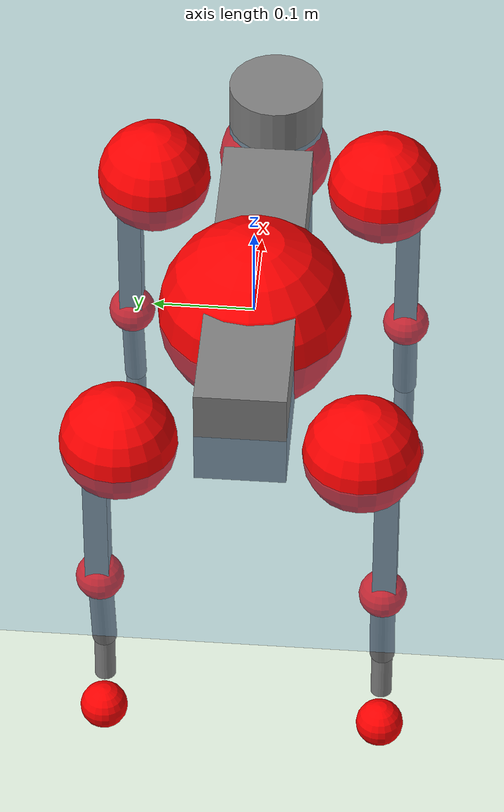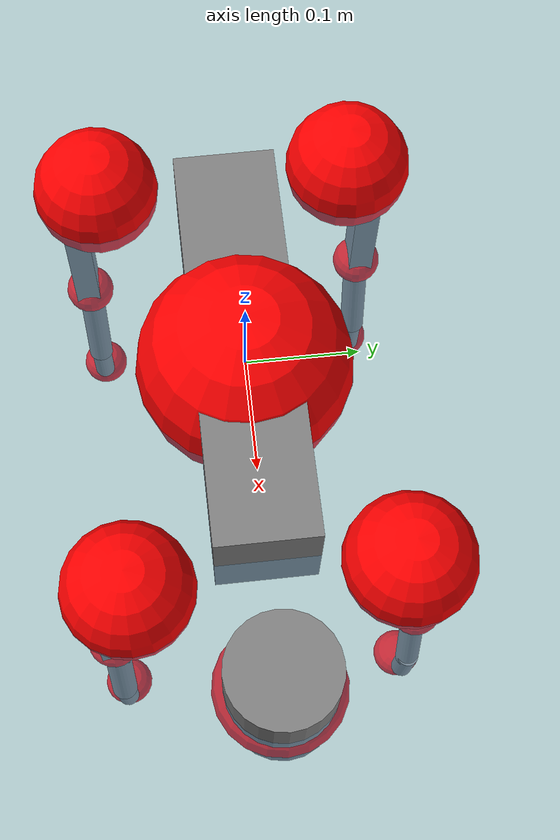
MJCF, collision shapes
<mujoco model="go2">
  <compiler angle="radian" assetdir="assets" balanceinertia="true" inertiafromgeom="false"/>

  <option timestep="0.005" density="1.2" viscosity="2e-05"/>

  <size nkey="1"/>

  <visual>
    <quality shadowsize="8192"/>
    <map shadowclip="0.5"/>
  </visual>

  <default>
    <default class="/">
      <geom contype="0" conaffinity="0" group="1" solref="-1000 -80"/>
      <site size="0.01 0.005 0.005" group="5"/>
      <general forcelimited="true" biastype="affine" gainprm="20" biasprm="0 -20 -0.5"/>
      <default class="go2">
        <joint armature="0.01" damping="0.01" frictionloss="0.2"/>
        <geom condim="1" margin="0.001"/>
        <default class="visual">
          <geom type="mesh" group="2"/>
        </default>
        <default class="collision">
          <geom group="3"/>
          <default class="foot">
            <geom size="0.022 0 0" condim="6" priority="1" friction="0.8 0.02 0.01" solimp="0.015 1 0.022"/>
          </default>
        </default>
        <default class="reward_collision_sphere">
          <geom group="5" rgba="1 0 0 1"/>
        </default>
      </default>
    </default>
  </default>

  <asset>
    <texture type="skybox" colorspace="auto" name="//unnamed_texture_0" builtin="gradient" rgb1="0.95 0.95 0.95" rgb2="0.95 0.95 0.95" width="100" height="600"/>
    <texture type="2d" colorspace="auto" name="texplane" builtin="checker" rgb1="0.345 0.575 0.748" rgb2="0.345 0.575 0.748" markrgb="1 1 1" width="512" height="512"/>
    <material name="MatPlane" class="/" texture="texplane" texuniform="true" texrepeat="2 2" specular="0.9"/>
    <material name="metal" class="/" rgba="0.9 0.95 0.95 1"/>
    <material name="black" class="/" rgba="0 0 0 1"/>
    <material name="white" class="/"/>
    <material name="gray" class="/" rgba="0.671705 0.692426 0.77427 1"/>
    <mesh name="base_0" class="/" file="base_0.obj"/>
    <mesh name="base_1" class="/" file="base_1.obj"/>
    <mesh name="base_2" class="/" file="base_2.obj"/>
    <mesh name="base_3" class="/" file="base_3.obj"/>
    <mesh name="base_4" class="/" file="base_4.obj"/>
    <mesh name="hip_0" class="/" file="hip_0.obj"/>
    <mesh name="hip_1" class="/" file="hip_1.obj"/>
    <mesh name="thigh_0" class="/" file="thigh_0.obj"/>
    <mesh name="thigh_1" class="/" file="thigh_1.obj"/>
    <mesh name="thigh_mirror_0" class="/" file="thigh_mirror_0.obj"/>
    <mesh name="thigh_mirror_1" class="/" file="thigh_mirror_1.obj"/>
    <mesh name="calf_0" class="/" file="calf_0.obj"/>
    <mesh name="calf_1" class="/" file="calf_1.obj"/>
    <mesh name="calf_mirror_0" class="/" file="calf_mirror_0.obj"/>
    <mesh name="calf_mirror_1" class="/" file="calf_mirror_1.obj"/>
    <mesh name="foot" class="/" file="foot.obj"/>
  </asset>

  <worldbody>
    <geom name="floor" class="/" size="100 100 0.125" type="plane" group="0" material="MatPlane"/>
    <light name="toplight_shadow" class="/" pos="0 0 5" dir="0.0990148 0.0990148 -0.990148" type="directional" ambient="0.04 0.04 0.04" diffuse="0.55 0.55 0.55" specular="0.12 0.12 0.12"/>
    <light name="toplight_fill" class="/" pos="0 0 5" dir="0.0990148 0.0990148 -0.990148" type="directional" castshadow="false" ambient="0.04 0.04 0.04" diffuse="0.3 0.3 0.3" specular="0.08 0.08 0.08"/>
    <body name="trunk" childclass="go2" pos="3.2625e-06 -0.000289196 -0.00256989" quat="0.999999 0.000622513 0.000510924 0.000909092">
      <inertial pos="0.0205917 0.00211483 -0.00478218" quat="-0.00173578 0.717599 0.00829617 0.696404" mass="6.24156" diaginertia="0.106583 0.105117 0.0138731"/>
      <joint name="//unnamed_joint_0" type="free" armature="0" damping="0" frictionloss="0"/>
      <geom name="//unnamed_geom_1" class="visual" material="black" mesh="base_0"/>
      <geom name="//unnamed_geom_2" class="visual" material="black" mesh="base_1"/>
      <geom name="//unnamed_geom_3" class="visual" material="black" mesh="base_2"/>
      <geom name="//unnamed_geom_4" class="visual" material="white" mesh="base_3"/>
      <geom name="//unnamed_geom_5" class="visual" material="gray" mesh="base_4"/>
      <geom name="trunk_1" class="collision" size="0.180873 0.0449537 0.0548099" type="box"/>
      <geom name="trunk_2" class="collision" size="0.0480788 0.0432709" pos="0.283013 0 0.00886099" type="cylinder"/>
      <geom name="trunk_3" class="collision" size="0.0451941" pos="0.290957 0 -0.0531659"/>
      <geom name="//unnamed_geom_9" class="reward_collision_sphere" size="0.0961577"/>
      <geom name="//unnamed_geom_10" class="reward_collision_sphere" size="0.0576946" pos="0.278048 0 -0.0398745"/>
      <site name="imu" pos="-0.0287778 0.00205177 0.0290934" size="0.00961577"/>
      <camera name="track" pos="0 -2.01121 0" quat="0.707107 0.707107 0 0" mode="trackcom"/>
      <camera name="ego_camera" pos="0.309825 0 0.0398745" quat="-0.5 -0.5 0.5 0.5"/>
      <body name="FL_hip" pos="0.191957 0.0470785 0.000977081" quat="1 -2.49012e-05 0.000121851 0.000129073">
        <inertial pos="-0.00747689 0.00211835 -0.00252132" quat="0.498957 0.508779 0.499884 0.492241" mass="0.600164" diaginertia="0.000865185 0.000618468 0.000260762"/>
        <joint name="FL_hip_joint" pos="0 0 0" axis="0.999974 0.00639215 0.00324675" range="-1.04667 1.05127" armature="0.0096789" damping="0" frictionloss="0.19283"/>
        <geom name="//unnamed_geom_11" class="visual" material="metal" mesh="hip_0"/>
        <geom name="//unnamed_geom_12" class="visual" material="gray" mesh="hip_1"/>
        <geom name="//unnamed_geom_13" class="collision" size="0.0442325 0.0192315" pos="0 0.0804482 0" quat="0.707107 0.707107 0 0" type="cylinder"/>
        <geom name="//unnamed_geom_14" class="reward_collision_sphere" size="0.0576946" pos="0 0.0703922 0"/>
        <body name="FL_thigh" pos="-0.00277879 0.0956691 0.00236465" quat="1 6.5208e-05 2.90161e-05 -6.44602e-05">
          <inertial pos="-0.0047081 -0.0224925 -0.0295112" quat="0.830311 0.0879307 -0.0236055 0.549813" mass="0.985024" diaginertia="0.00553556 0.00584858 0.000456401"/>
          <joint name="FL_thigh_joint" pos="0 0 0" axis="-0.000349013 0.999988 0.00479035" stiffness="0.0064937" range="-1.57284 3.49672" armature="0.00902863" damping="0.0135425" frictionloss="0.191805"/>
          <geom name="//unnamed_geom_15" class="visual" material="metal" mesh="thigh_0"/>
          <geom name="//unnamed_geom_16" class="visual" material="gray" mesh="thigh_1"/>
          <geom name="//unnamed_geom_17" class="collision" size="0.102408 0.0117793 0.0163468" pos="0 0 -0.0943696" quat="0.707107 0 0.707107 0" type="box"/>
          <body name="FL_calf" pos="-0.000237113 8.46778e-05 -0.188989" quat="1 -2.95083e-06 -8.30657e-05 0.000114945">
            <inertial pos="0.00367656 -0.00300302 -0.1245" quat="0.711675 0.000513726 -0.00636086 0.702479" mass="0.212662" diaginertia="0.00138937 0.00150378 2.90025e-05"/>
            <joint name="FL_calf_joint" pos="0 0 0" axis="-0.00414225 0.999991 0.000467454" stiffness="0.00385274" range="-2.77629 -0.826102" armature="0.00995701" damping="0.00860151" frictionloss="0.217428"/>
            <geom name="//unnamed_geom_18" class="visual" material="gray" mesh="calf_0"/>
            <geom name="//unnamed_geom_19" class="visual" material="black" mesh="calf_1"/>
            <geom name="FL_calf0" class="collision" size="0.0115389 0.0576946" pos="0.00794422 0 -0.0531659" quat="0.994493 0 -0.104807 0" type="cylinder"/>
            <geom name="//unnamed_geom_21" class="collision" size="0.0105773 0.0312512" pos="0.0198606 0 -0.131143" quat="0.999688 0 0.0249974 0" type="cylinder"/>
            <geom name="//unnamed_geom_22" class="visual" pos="0 0 -0.188739" quat="1 0 0 0" material="black" mesh="foot"/>
            <geom name="FL_foot" class="foot" size="0.0164427" pos="-0.00198606 0 -0.188739"/>
            <geom name="//unnamed_geom_24" class="reward_collision_sphere" size="0.0240394"/>
            <geom name="//unnamed_geom_25" class="reward_collision_sphere" size="0.0240394" pos="-0.00198606 0 -0.188739"/>
            <site name="FL_foot" class="foot" pos="-0.00198606 0 -0.188739" size="0.00961577"/>
          </body>
        </body>
      </body>
      <body name="FR_hip" pos="0.192703 -0.0468809 0.000495299" quat="0.999999 0.000736797 0.0012025 0.000180288">
        <inertial pos="-0.0043173 -0.00191546 0.000156224" quat="0.495653 0.501522 0.494587 0.508122" mass="0.630405" diaginertia="0.000858759 0.000620459 0.000265066"/>
        <joint name="FR_hip_joint" pos="0 0 0" axis="0.999997 0.00214781 -0.00146142" range="-1.10146 1.04698" armature="0.00917355" damping="0.00396589" frictionloss="0.20051"/>
        <geom name="//unnamed_geom_26" class="visual" pos="0 1.04107e-09 4.46536e-08" quat="4.63268e-05 1 0 0" material="metal" mesh="hip_0"/>
        <geom name="//unnamed_geom_27" class="visual" pos="0 1.6877e-09 -1.10445e-07" quat="4.63268e-05 1 0 0" material="gray" mesh="hip_1"/>
        <geom name="//unnamed_geom_28" class="collision" size="0.0442325 0.0192315" pos="0 -0.0804482 0" quat="0.707107 0.707107 0 0" type="cylinder"/>
        <geom name="//unnamed_geom_29" class="reward_collision_sphere" size="0.0576946" pos="0 -0.0703922 0"/>
        <body name="FR_thigh" pos="6.88542e-05 -0.0968043 0.00205775" quat="1 4.76877e-05 -1.78087e-05 -1.72126e-05">
          <inertial pos="-0.0029051 0.0229016 -0.0278606" quat="0.549545 -0.0160499 0.0826596 0.83121" mass="1.04332" diaginertia="0.00576716 0.00585995 0.000476242"/>
          <joint name="FR_thigh_joint" pos="0 0 0" axis="0.00488525 -0.999977 0.00462825" stiffness="0.00970221" range="-3.49081 1.56132" armature="0.00988384" damping="0.00393316" frictionloss="0.175852"/>
          <geom name="//unnamed_geom_30" class="visual" material="metal" mesh="thigh_mirror_0"/>
          <geom name="//unnamed_geom_31" class="visual" material="gray" mesh="thigh_mirror_1"/>
          <geom name="//unnamed_geom_32" class="collision" size="0.102408 0.0117793 0.0163468" pos="0 0 -0.0943696" quat="0.707107 0 0.707107 0" type="box"/>
          <body name="FR_calf" pos="-0.00298482 -0.000655423 -0.186759" quat="1 0.000152476 -0.000291938 -4.49632e-05">
            <inertial pos="0.00731579 -0.00158231 -0.123681" quat="0.700311 0.00773394 0.00205635 0.713793" mass="0.209177" diaginertia="0.00138631 0.00150021 2.79e-05"/>
            <joint name="FR_calf_joint" pos="0 0 0" axis="0.000410183 -1 -0.000303857" stiffness="0.00499069" range="0.83414 2.71479" armature="0.00967559" damping="0" frictionloss="0.194305"/>
            <geom name="//unnamed_geom_33" class="visual" material="gray" mesh="calf_mirror_0"/>
            <geom name="//unnamed_geom_34" class="visual" material="black" mesh="calf_mirror_1"/>
            <geom name="FR_calf0" class="collision" size="0.0125005 0.0576946" pos="0.00993028 0 -0.0531659" quat="0.995004 0 -0.0998334 0" type="cylinder"/>
            <geom name="//unnamed_geom_36" class="collision" size="0.0105773 0.0312512" pos="0.0198606 0 -0.131143" quat="0.999688 0 0.0249974 0" type="cylinder"/>
            <geom name="//unnamed_geom_37" class="visual" pos="0 0 -0.188739" quat="1 0 0 0" material="black" mesh="foot"/>
            <geom name="FR_foot" class="foot" size="0.0211346" pos="-0.00198606 0 -0.188739"/>
            <geom name="//unnamed_geom_39" class="reward_collision_sphere" size="0.0240394"/>
            <geom name="//unnamed_geom_40" class="reward_collision_sphere" size="0.0240394" pos="-0.00198606 0 -0.188739"/>
            <site name="FR_foot" class="foot" pos="-0.00198606 0 -0.188739" size="0.00961577"/>
          </body>
        </body>
      </body>
      <body name="RL_hip" pos="-0.191525 0.0458482 0.00133982" quat="1 -2.09178e-05 -3.4921e-05 5.71811e-05">
        <inertial pos="0.00622206 0.000175725 -0.00242721" quat="0.504843 0.501429 0.495074 0.498603" mass="0.598371" diaginertia="0.00085219 0.000604435 0.00025567"/>
        <joint name="RL_hip_joint" pos="0 0 0" axis="-0.999915 -9.32445e-05 0.0129999" range="-1.09324 1.092" armature="0.0106198" damping="0.0129195" frictionloss="0.191564"/>
        <geom name="//unnamed_geom_41" class="visual" pos="-9.31517e-10 0 -1.82599e-07" quat="4.63268e-05 0 1 0" material="metal" mesh="hip_0"/>
        <geom name="//unnamed_geom_42" class="visual" pos="-1.5101e-09 0 -1.61939e-07" quat="4.63268e-05 0 1 0" material="gray" mesh="hip_1"/>
        <geom name="//unnamed_geom_43" class="collision" size="0.0442325 0.0192315" pos="0 0.0804482 0" quat="0.707107 0.707107 0 0" type="cylinder"/>
        <geom name="//unnamed_geom_44" class="reward_collision_sphere" size="0.0576946" pos="0 0.0703922 0"/>
        <body name="RL_thigh" pos="0.000295891 0.0937271 0.00077292" quat="1 -0.000661864 0.000216192 0.000114127">
          <inertial pos="-0.00106879 -0.0235639 -0.0316325" quat="0.82946 0.0851317 -0.0200271 0.551678" mass="1.05061" diaginertia="0.00611264 0.00618619 0.000502549"/>
          <joint name="RL_thigh_joint" pos="0 0 0" axis="0.00279263 0.999805 -0.0195366" stiffness="0.00430969" range="-0.540382 4.54603" armature="0.00994061" damping="0.00242326" frictionloss="0.188375"/>
          <geom name="//unnamed_geom_45" class="visual" material="metal" mesh="thigh_0"/>
          <geom name="//unnamed_geom_46" class="visual" material="gray" mesh="thigh_1"/>
          <geom name="//unnamed_geom_47" class="collision" size="0.102408 0.0117793 0.0163468" pos="0 0 -0.0943696" quat="0.707107 0 0.707107 0" type="box"/>
          <body name="RL_calf" pos="-0.00113454 -0.00130607 -0.190803" quat="1 1.70846e-05 -2.66435e-05 0.000752906">
            <inertial pos="0.00368374 0.00090836 -0.127775" quat="0.712394 -0.00263762 -0.0150797 0.701613" mass="0.212597" diaginertia="0.00142014 0.00148216 2.83613e-05"/>
            <joint name="RL_calf_joint" pos="0 0 0" axis="0.00822503 0.999962 0.00289158" stiffness="0.00460252" range="-2.72778 -0.888556" armature="0.0107769" damping="0" frictionloss="0.191078"/>
            <geom name="//unnamed_geom_48" class="visual" material="gray" mesh="calf_0"/>
            <geom name="//unnamed_geom_49" class="visual" material="black" mesh="calf_1"/>
            <geom name="RL_calf0" class="collision" size="0.0125005 0.0576946" pos="0.00993028 0 -0.0531659" quat="0.995004 0 -0.0998334 0" type="cylinder"/>
            <geom name="//unnamed_geom_51" class="collision" size="0.0105773 0.0312512" pos="0.0198606 0 -0.131143" quat="0.999688 0 0.0249974 0" type="cylinder"/>
            <geom name="//unnamed_geom_52" class="visual" pos="0 0 -0.188739" quat="1 0 0 0" material="black" mesh="foot"/>
            <geom name="RL_foot" class="foot" size="0.0192102" pos="-0.00198606 0 -0.188739"/>
            <geom name="//unnamed_geom_54" class="reward_collision_sphere" size="0.0240394"/>
            <geom name="//unnamed_geom_55" class="reward_collision_sphere" size="0.0240394" pos="-0.00198606 0 -0.188739"/>
            <site name="RL_foot" class="foot" pos="-0.00198606 0 -0.188739" size="0.00961577"/>
          </body>
        </body>
      </body>
      <body name="RR_hip" pos="-0.18936 -0.0476145 -0.000491164" quat="1 -5.30313e-05 5.80138e-05 -4.14021e-06">
        <inertial pos="0.00352294 -0.00248453 0.000115145" quat="0.494022 0.505421 0.492238 0.508128" mass="0.601936" diaginertia="0.000908391 0.000633267 0.000270827"/>
        <joint name="RR_hip_joint" pos="0 0 0" axis="-0.999909 0.0128272 0.00426838" stiffness="0.00164108" range="-1.03946 1.04911" armature="0.00967853" damping="0.00822422" frictionloss="0.217405"/>
        <geom name="//unnamed_geom_56" class="visual" pos="9.31952e-10 1.04107e-09 -2.27252e-07" quat="2.14617e-09 4.63268e-05 4.63268e-05 -1" material="metal" mesh="hip_0"/>
        <geom name="//unnamed_geom_57" class="visual" pos="1.50902e-09 1.6877e-09 -5.14936e-08" quat="2.14617e-09 4.63268e-05 4.63268e-05 -1" material="gray" mesh="hip_1"/>
        <geom name="//unnamed_geom_58" class="collision" size="0.0442325 0.0192315" pos="0 -0.0804482 0" quat="0.707107 0.707107 0 0" type="cylinder"/>
        <geom name="//unnamed_geom_59" class="reward_collision_sphere" size="0.0576946" pos="0 -0.0703922 0"/>
        <body name="RR_thigh" pos="0.00129826 -0.0960624 -0.00198804" quat="1 -0.000198916 0.000310533 -0.000247152">
          <inertial pos="-0.00206601 0.0230479 -0.0309256" quat="0.555247 -0.0185498 0.0854022 0.827081" mass="1.0038" diaginertia="0.00597359 0.00610796 0.00048057"/>
          <joint name="RR_thigh_joint" pos="0 0 0" axis="-0.00563667 -0.999983 -0.00169377" stiffness="0.00130056" range="-4.5411 0.49207" armature="0.00943354" damping="0.0142454" frictionloss="0.202253"/>
          <geom name="//unnamed_geom_60" class="visual" material="metal" mesh="thigh_mirror_0"/>
          <geom name="//unnamed_geom_61" class="visual" material="gray" mesh="thigh_mirror_1"/>
          <geom name="//unnamed_geom_62" class="collision" size="0.102408 0.0117793 0.0163468" pos="0 0 -0.0943696" quat="0.707107 0 0.707107 0" type="box"/>
          <body name="RR_calf" pos="-0.00192776 0.00141483 -0.190976" quat="0.999999 -0.000828411 0.00092971 0.000191663">
            <inertial pos="0.00510048 0.000498035 -0.125222" quat="0.701364 0.0025717 -0.0074842 0.712759" mass="0.218015" diaginertia="0.00145651 0.00151643 2.83425e-05"/>
            <joint name="RR_calf_joint" pos="0 0 0" axis="-0.000738261 -0.99988 -0.0154523" range="0.879956 2.74736" armature="0.00946795" damping="0.00336363" frictionloss="0.202435"/>
            <geom name="//unnamed_geom_63" class="visual" material="gray" mesh="calf_mirror_0"/>
            <geom name="//unnamed_geom_64" class="visual" material="black" mesh="calf_mirror_1"/>
            <geom name="RR_calf0" class="collision" size="0.0125005 0.0576946" pos="0.00993028 0 -0.0531659" quat="0.995004 0 -0.0998334 0" type="cylinder"/>
            <geom name="//unnamed_geom_66" class="collision" size="0.0105773 0.0312512" pos="0.0198606 0 -0.131143" quat="0.999688 0 0.0249974 0" type="cylinder"/>
            <geom name="//unnamed_geom_67" class="visual" pos="0 0 -0.188739" quat="1 0 0 0" material="black" mesh="foot"/>
            <geom name="RR_foot" class="foot" size="0.0239792" pos="-0.00198606 0 -0.188739"/>
            <geom name="//unnamed_geom_69" class="reward_collision_sphere" size="0.0240394"/>
            <geom name="//unnamed_geom_70" class="reward_collision_sphere" size="0.0240394" pos="-0.00198606 0 -0.188739"/>
            <site name="RR_foot" class="foot" pos="-0.00198606 0 -0.188739" size="0.00961577"/>
          </body>
        </body>
      </body>
    </body>
  </worldbody>

  <contact>
    <pair class="/" geom1="floor" geom2="FL_foot" name="//unnamed_contact_0"/>
    <pair class="/" geom1="floor" geom2="FR_foot" name="//unnamed_contact_1"/>
    <pair class="/" geom1="floor" geom2="RL_foot" name="//unnamed_contact_2"/>
    <pair class="/" geom1="floor" geom2="RR_foot" name="//unnamed_contact_3"/>
  </contact>

  <actuator>
    <general name="FL_hip" class="/" joint="FL_hip_joint" forcerange="-22.5826 22.5826" gainprm="18.9014" biasprm="0 -18.9014 -0.495106"/>
    <general name="FL_thigh" class="/" joint="FL_thigh_joint" forcerange="-22.4476 22.4476" gainprm="18.9014" biasprm="0 -18.9014 -0.495106"/>
    <general name="FL_calf" class="/" joint="FL_calf_joint" forcerange="-44.1718 44.1718" gainprm="18.9014" biasprm="0 -18.9014 -0.495106"/>
    <general name="FR_hip" class="/" joint="FR_hip_joint" forcerange="-23.1319 23.1319" gainprm="18.9014" biasprm="0 -18.9014 -0.495106"/>
    <general name="FR_thigh" class="/" joint="FR_thigh_joint" forcerange="-22.9363 22.9363" gainprm="18.9014" biasprm="0 -18.9014 -0.495106"/>
    <general name="FR_calf" class="/" joint="FR_calf_joint" forcerange="-44.0229 44.0229" gainprm="18.9014" biasprm="0 -18.9014 -0.495106"/>
    <general name="RL_hip" class="/" joint="RL_hip_joint" forcerange="-22.8635 22.8635" gainprm="18.9014" biasprm="0 -18.9014 -0.495106"/>
    <general name="RL_thigh" class="/" joint="RL_thigh_joint" forcerange="-20.6566 20.6566" gainprm="18.9014" biasprm="0 -18.9014 -0.495106"/>
    <general name="RL_calf" class="/" joint="RL_calf_joint" forcerange="-47.5205 47.5205" gainprm="18.9014" biasprm="0 -18.9014 -0.495106"/>
    <general name="RR_hip" class="/" joint="RR_hip_joint" forcerange="-22.688 22.688" gainprm="18.9014" biasprm="0 -18.9014 -0.495106"/>
    <general name="RR_thigh" class="/" joint="RR_thigh_joint" forcerange="-23.5498 23.5498" gainprm="18.9014" biasprm="0 -18.9014 -0.495106"/>
    <general name="RR_calf" class="/" joint="RR_calf_joint" forcerange="-44.9171 44.9171" gainprm="18.9014" biasprm="0 -18.9014 -0.495106"/>
  </actuator>

  <sensor>
    <gyro site="imu" name="imu_angular_velocity"/>
    <velocimeter site="imu" name="imu_linear_velocity"/>
    <framelinvel objtype="site" objname="FL_foot" name="FL_foot_global_linear_velocity"/>
    <framelinvel objtype="site" objname="FR_foot" name="FR_foot_global_linear_velocity"/>
    <framelinvel objtype="site" objname="RL_foot" name="RL_foot_global_linear_velocity"/>
    <framelinvel objtype="site" objname="RR_foot" name="RR_foot_global_linear_velocity"/>
  </sensor>

  <keyframe>
    <key name="home" qpos="0 0 0.325 1 0 0 0 0.1 0.8 -1.5 -0.1 -0.8 1.5 -0.1 0.8 -1.5 0.1 -0.8 1.5"/>
  </keyframe>
</mujoco>
